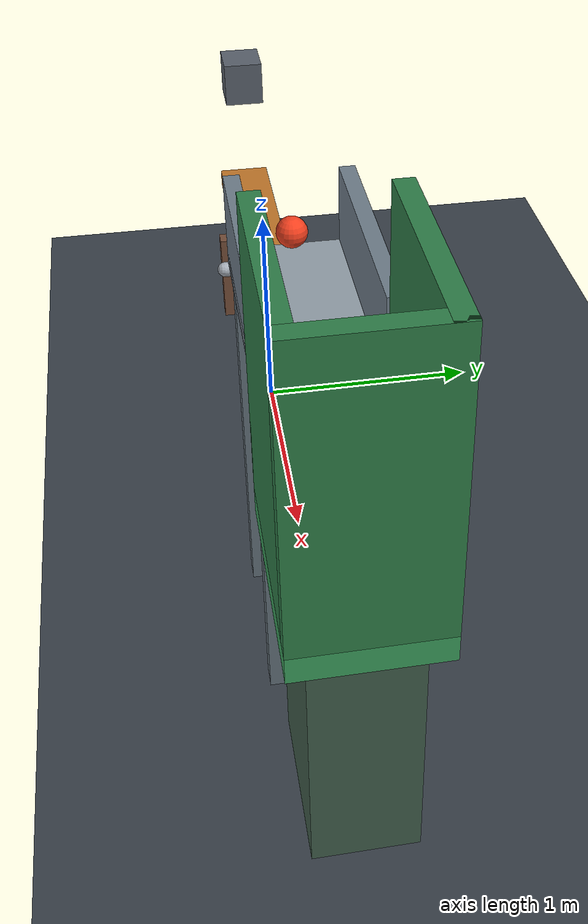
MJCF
<mujoco model="weight_lever_lift_bridge_cup">
  <compiler angle="radian" autolimits="true"/>
  <option timestep="0.002" gravity="0 0 -9.81" integrator="implicitfast" solver="Newton" iterations="80" tolerance="1e-10" cone="elliptic" impratio="5"/>

  <visual>
    <headlight ambient="0.35 0.35 0.35" diffuse="0.7 0.7 0.7" specular="0.2 0.2 0.2"/>
  </visual>

  <worldbody>
    <light name="main_light" pos="0.5 -3 5" dir="0 0 -1"/>
    <camera name="overview" pos="3.6 -6 3.4" xyaxes="0.88 0.47 0 -0.16 0.30 0.94"/>

    <geom name="floor" type="plane" size="6 4 0.1" rgba="0.22 0.25 0.28 1" condim="6" friction="0.8 0.02 0.01"/>

    <!-- The weight's underside starts exactly 0.5 m above the lever. -->
    <body name="weight" pos="-0.75 0 1.39">
      <freejoint name="weight_free"/>
      <geom name="weight_block" type="box" size="0.10 0.09 0.10" mass="3" rgba="0.35 0.38 0.42 1" condim="6" friction="0.6 0.01 0.002" solref="0.006 1" solimp="0.98 0.995 0.001"/>
    </body>

    <body name="lever" pos="0 0 0.75">
      <joint name="lever_hinge" type="hinge" axis="0 1 0" range="-0.28 0" damping="0.015" frictionloss="0.005" armature="0.002" solreflimit="0.004 1" solimplimit="0.98 0.999 0.001"/>
      <geom name="lever_beam" type="box" size="0.95 0.12 0.04" mass="0.40" rgba="0.75 0.46 0.16 1" condim="6" friction="0.55 0.01 0.002" solref="0.006 1" solimp="0.98 0.995 0.001"/>
    </body>

    <!-- The shoe starts 0.10 m above the horizontal lever. -->
    <body name="lift" pos="0.85 0 0.89">
      <joint name="lift_slide" type="slide" axis="0 0 1" range="0 0.75" damping="0.015" frictionloss="0.005" solreflimit="0.004 1" solimplimit="0.98 0.999 0.001"/>
      <geom name="lift_shoe" type="box" pos="0 0 0.025" size="0.09 0.09 0.025" mass="0.06" rgba="0.18 0.55 0.75 1" condim="6" friction="0.3 0.005 0.001" solref="0.006 1" solimp="0.98 0.995 0.001"/>
      <geom name="lift_stem" type="capsule" fromto="0 0 0.05 0 0 0.31" size="0.018" mass="0.035" rgba="0.18 0.55 0.75 1" friction="0.3 0.005 0.001" solref="0.006 1"/>
      <geom name="lift_head_support" type="capsule" fromto="0 0 0.31 0.155 0 0.31" size="0.018" mass="0.015" rgba="0.18 0.55 0.75 1" friction="0.3 0.005 0.001" solref="0.006 1"/>
      <geom name="lift_striking_face" type="box" pos="0.155 0 0.31" quat="0.894427191 0 0.447213595 0" size="0.11 0.075 0.025" mass="0.13" rgba="0.25 0.72 0.92 1" priority="1" condim="6" friction="0.05 0.001 0.0001" solref="0.006 1" solimp="0.98 0.995 0.001"/>
    </body>

    <body name="ball" pos="1.13 0 1.56">
      <freejoint name="ball_free"/>
      <geom name="ball_sphere" type="sphere" size="0.06" mass="0.05" rgba="0.95 0.25 0.12 1" condim="6" friction="0.5 0.005 0.0005" solref="0.006 1" solimp="0.98 0.995 0.001"/>
    </body>

    <body name="fulcrum" pos="0 0 0">
      <geom name="fulcrum_pedestal" type="box" pos="0 0 0.32" size="0.12 0.15 0.32" rgba="0.38 0.40 0.43 1"/>
      <geom name="fulcrum_axle" type="capsule" fromto="0 -0.19 0.75 0 0.19 0.75" size="0.035" contype="0" conaffinity="0" rgba="0.65 0.68 0.72 1"/>
    </body>

    <body name="lever_stop" pos="-0.80 0 0.234">
      <geom name="lever_stop_block" type="box" size="0.04 0.16 0.234" rgba="0.45 0.30 0.22 1" condim="6" friction="0.6 0.01 0.002" solref="0.004 1" solimp="0.98 0.999 0.001"/>
    </body>

    <!-- The angled striker remains to the left of the bridge deck. -->
    <body name="bridge" pos="1.56 0 1.47">
      <geom name="bridge_deck" type="box" size="0.45 0.24 0.03" rgba="0.57 0.62 0.66 1" condim="6" friction="0.5 0.005 0.0005" solref="0.006 1" solimp="0.98 0.995 0.001"/>
      <geom name="bridge_side_left" type="box" pos="0 0.21 0.15" size="0.45 0.03 0.18" rgba="0.43 0.49 0.54 1" condim="6" friction="0.5 0.005 0.0005" solref="0.006 1"/>
      <geom name="bridge_side_right" type="box" pos="0 -0.21 0.15" size="0.45 0.03 0.18" rgba="0.43 0.49 0.54 1" condim="6" friction="0.5 0.005 0.0005" solref="0.006 1"/>
      <geom name="bridge_leg_front_left" type="box" pos="-0.30 0.19 -0.75" size="0.045 0.045 0.72" rgba="0.38 0.43 0.47 1"/>
      <geom name="bridge_leg_front_right" type="box" pos="-0.30 -0.19 -0.75" size="0.045 0.045 0.72" rgba="0.38 0.43 0.47 1"/>
      <geom name="bridge_leg_back_left" type="box" pos="0.30 0.19 -0.75" size="0.045 0.045 0.72" rgba="0.38 0.43 0.47 1"/>
      <geom name="bridge_leg_back_right" type="box" pos="0.30 -0.19 -0.75" size="0.045 0.045 0.72" rgba="0.38 0.43 0.47 1"/>
    </body>

    <!-- A recessed, high-walled cup dissipates the ball's rolling motion. -->
    <body name="cup" pos="0 0 0">
      <geom name="cup_bottom" type="box" pos="2.3875 0 1.05" size="0.3825 0.26 0.05" rgba="0.23 0.62 0.36 1" priority="2" condim="6" friction="1 0.08 0.03" solref="0.008 1" solimp="0.98 0.995 0.001"/>
      <geom name="cup_front_lip" type="box" pos="2.045 0 1.24" size="0.04 0.26 0.14" rgba="0.18 0.49 0.28 1" priority="2" condim="6" friction="1 0.08 0.03" solref="0.008 1" solimp="0.98 0.995 0.001"/>
      <geom name="cup_back_wall" type="box" pos="2.735 0 1.65" size="0.035 0.26 0.55" rgba="0.18 0.49 0.28 1" priority="2" condim="6" friction="1 0.08 0.03" solref="0.008 1" solimp="0.98 0.995 0.001"/>
      <geom name="cup_left_wall" type="box" pos="2.3875 0.225 1.65" size="0.3825 0.035 0.55" rgba="0.18 0.49 0.28 1" priority="2" condim="6" friction="1 0.08 0.03" solref="0.008 1" solimp="0.98 0.995 0.001"/>
      <geom name="cup_right_wall" type="box" pos="2.3875 -0.225 1.65" size="0.3825 0.035 0.55" rgba="0.18 0.49 0.28 1" priority="2" condim="6" friction="1 0.08 0.03" solref="0.008 1" solimp="0.98 0.995 0.001"/>
      <geom name="cup_support" type="box" pos="2.3875 0 0.50" size="0.30 0.19 0.50" rgba="0.25 0.36 0.29 1"/>
    </body>
  </worldbody>

  <keyframe>
    <key name="start" qpos="-0.75 0 1.39 1 0 0 0 0 0 1.13 0 1.56 1 0 0 0" qvel="0 0 0 0 0 0 0 0 0 0 0 0 0 0"/>
  </keyframe>
</mujoco>
